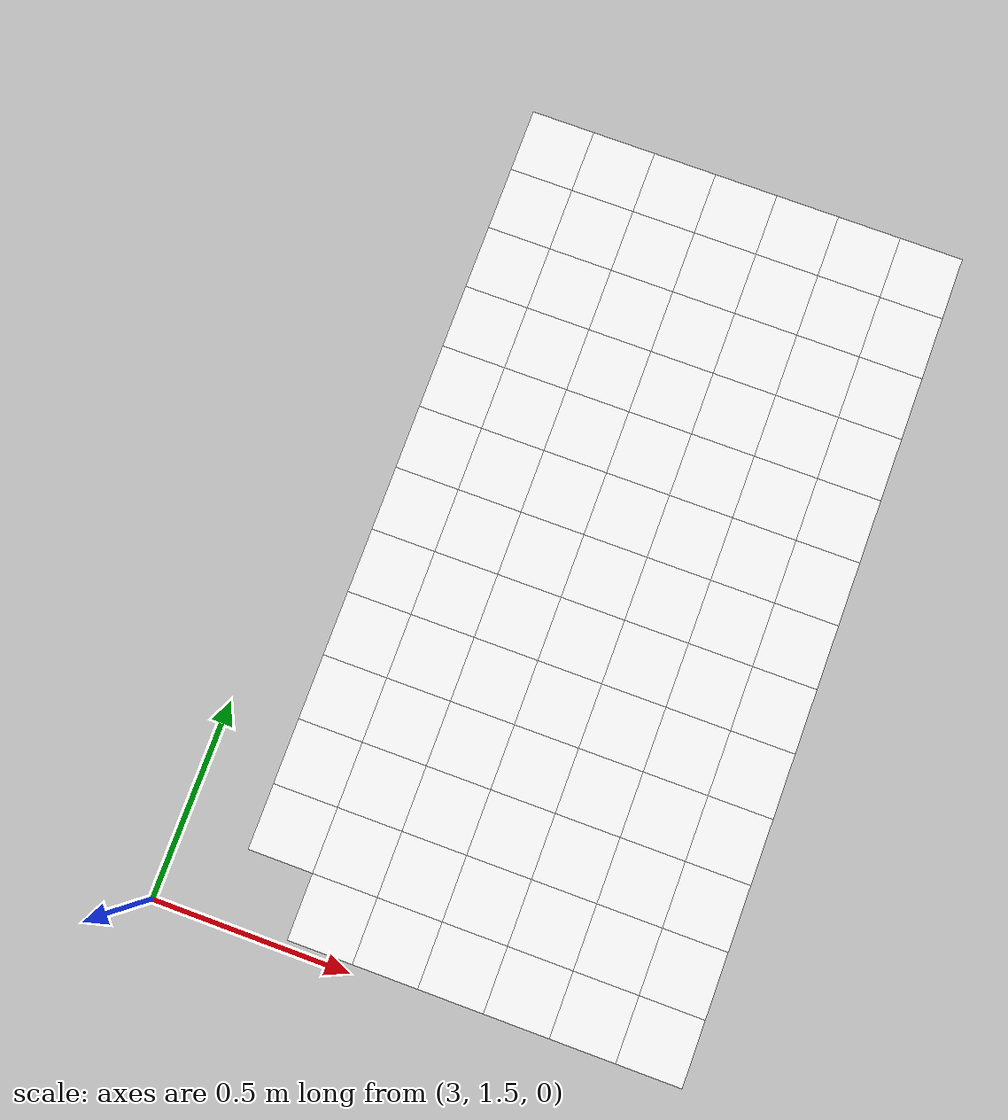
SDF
<sdf version="1.7">
 <world name="default">
  <include><uri>model://sun</uri></include>
  <model name="static_environment">
   <static>true</static>
   <link name="region_747">
    <pose>3.450000000000003 1.65 0.26 0.0 0.0 0.0</pose>
    <collision name="region_747_collision">
     <geometry><box><size>0.15 0.15 0.1</size></box></geometry>
     <surface><friction><ode><mu>1.0</mu><mu2>1.0</mu2></ode></friction></surface>
    </collision>
    <visual name="region_747_visual">
     <geometry><box><size>0.15 0.15 0.1</size></box></geometry>
     <material><ambient>1.0 1.0 1.0 1.0</ambient><diffuse>1.0 1.0 1.0 1.0</diffuse></material>
    </visual>
   </link>
   <link name="region_748">
    <pose>3.600000000000003 1.65 0.26 0.0 0.0 0.0</pose>
    <collision name="region_748_collision">
     <geometry><box><size>0.15 0.15 0.1</size></box></geometry>
     <surface><friction><ode><mu>1.0</mu><mu2>1.0</mu2></ode></friction></surface>
    </collision>
    <visual name="region_748_visual">
     <geometry><box><size>0.15 0.15 0.1</size></box></geometry>
     <material><ambient>1.0 1.0 1.0 1.0</ambient><diffuse>1.0 1.0 1.0 1.0</diffuse></material>
    </visual>
   </link>
   <link name="region_749">
    <pose>3.7500000000000036 1.65 0.26 0.0 0.0 0.0</pose>
    <collision name="region_749_collision">
     <geometry><box><size>0.15 0.15 0.1</size></box></geometry>
     <surface><friction><ode><mu>1.0</mu><mu2>1.0</mu2></ode></friction></surface>
    </collision>
    <visual name="region_749_visual">
     <geometry><box><size>0.15 0.15 0.1</size></box></geometry>
     <material><ambient>1.0 1.0 1.0 1.0</ambient><diffuse>1.0 1.0 1.0 1.0</diffuse></material>
    </visual>
   </link>
   <link name="region_750">
    <pose>3.900000000000004 1.65 0.26 0.0 0.0 0.0</pose>
    <collision name="region_750_collision">
     <geometry><box><size>0.15 0.15 0.1</size></box></geometry>
     <surface><friction><ode><mu>1.0</mu><mu2>1.0</mu2></ode></friction></surface>
    </collision>
    <visual name="region_750_visual">
     <geometry><box><size>0.15 0.15 0.1</size></box></geometry>
     <material><ambient>1.0 1.0 1.0 1.0</ambient><diffuse>1.0 1.0 1.0 1.0</diffuse></material>
    </visual>
   </link>
   <link name="region_751">
    <pose>4.050000000000004 1.65 0.26 0.0 0.0 0.0</pose>
    <collision name="region_751_collision">
     <geometry><box><size>0.15 0.15 0.1</size></box></geometry>
     <surface><friction><ode><mu>1.0</mu><mu2>1.0</mu2></ode></friction></surface>
    </collision>
    <visual name="region_751_visual">
     <geometry><box><size>0.15 0.15 0.1</size></box></geometry>
     <material><ambient>1.0 1.0 1.0 1.0</ambient><diffuse>1.0 1.0 1.0 1.0</diffuse></material>
    </visual>
   </link>
   <link name="region_752">
    <pose>4.200000000000005 1.65 0.26 0.0 0.0 0.0</pose>
    <collision name="region_752_collision">
     <geometry><box><size>0.15 0.15 0.1</size></box></geometry>
     <surface><friction><ode><mu>1.0</mu><mu2>1.0</mu2></ode></friction></surface>
    </collision>
    <visual name="region_752_visual">
     <geometry><box><size>0.15 0.15 0.1</size></box></geometry>
     <material><ambient>1.0 1.0 1.0 1.0</ambient><diffuse>1.0 1.0 1.0 1.0</diffuse></material>
    </visual>
   </link>
   <link name="region_766">
    <pose>3.3000000000000025 1.7999999999999998 0.26 0.0 0.0 0.0</pose>
    <collision name="region_766_collision">
     <geometry><box><size>0.15 0.15 0.1</size></box></geometry>
     <surface><friction><ode><mu>1.0</mu><mu2>1.0</mu2></ode></friction></surface>
    </collision>
    <visual name="region_766_visual">
     <geometry><box><size>0.15 0.15 0.1</size></box></geometry>
     <material><ambient>1.0 1.0 1.0 1.0</ambient><diffuse>1.0 1.0 1.0 1.0</diffuse></material>
    </visual>
   </link>
   <link name="region_767">
    <pose>3.450000000000003 1.7999999999999998 0.26 0.0 0.0 0.0</pose>
    <collision name="region_767_collision">
     <geometry><box><size>0.15 0.15 0.1</size></box></geometry>
     <surface><friction><ode><mu>1.0</mu><mu2>1.0</mu2></ode></friction></surface>
    </collision>
    <visual name="region_767_visual">
     <geometry><box><size>0.15 0.15 0.1</size></box></geometry>
     <material><ambient>1.0 1.0 1.0 1.0</ambient><diffuse>1.0 1.0 1.0 1.0</diffuse></material>
    </visual>
   </link>
   <link name="region_768">
    <pose>3.600000000000003 1.7999999999999998 0.26 0.0 0.0 0.0</pose>
    <collision name="region_768_collision">
     <geometry><box><size>0.15 0.15 0.1</size></box></geometry>
     <surface><friction><ode><mu>1.0</mu><mu2>1.0</mu2></ode></friction></surface>
    </collision>
    <visual name="region_768_visual">
     <geometry><box><size>0.15 0.15 0.1</size></box></geometry>
     <material><ambient>1.0 1.0 1.0 1.0</ambient><diffuse>1.0 1.0 1.0 1.0</diffuse></material>
    </visual>
   </link>
   <link name="region_769">
    <pose>3.7500000000000036 1.7999999999999998 0.26 0.0 0.0 0.0</pose>
    <collision name="region_769_collision">
     <geometry><box><size>0.15 0.15 0.1</size></box></geometry>
     <surface><friction><ode><mu>1.0</mu><mu2>1.0</mu2></ode></friction></surface>
    </collision>
    <visual name="region_769_visual">
     <geometry><box><size>0.15 0.15 0.1</size></box></geometry>
     <material><ambient>1.0 1.0 1.0 1.0</ambient><diffuse>1.0 1.0 1.0 1.0</diffuse></material>
    </visual>
   </link>
   <link name="region_770">
    <pose>3.900000000000004 1.7999999999999998 0.26 0.0 0.0 0.0</pose>
    <collision name="region_770_collision">
     <geometry><box><size>0.15 0.15 0.1</size></box></geometry>
     <surface><friction><ode><mu>1.0</mu><mu2>1.0</mu2></ode></friction></surface>
    </collision>
    <visual name="region_770_visual">
     <geometry><box><size>0.15 0.15 0.1</size></box></geometry>
     <material><ambient>1.0 1.0 1.0 1.0</ambient><diffuse>1.0 1.0 1.0 1.0</diffuse></material>
    </visual>
   </link>
   <link name="region_771">
    <pose>4.050000000000004 1.7999999999999998 0.26 0.0 0.0 0.0</pose>
    <collision name="region_771_collision">
     <geometry><box><size>0.15 0.15 0.1</size></box></geometry>
     <surface><friction><ode><mu>1.0</mu><mu2>1.0</mu2></ode></friction></surface>
    </collision>
    <visual name="region_771_visual">
     <geometry><box><size>0.15 0.15 0.1</size></box></geometry>
     <material><ambient>1.0 1.0 1.0 1.0</ambient><diffuse>1.0 1.0 1.0 1.0</diffuse></material>
    </visual>
   </link>
   <link name="region_772">
    <pose>4.200000000000005 1.7999999999999998 0.26 0.0 0.0 0.0</pose>
    <collision name="region_772_collision">
     <geometry><box><size>0.15 0.15 0.1</size></box></geometry>
     <surface><friction><ode><mu>1.0</mu><mu2>1.0</mu2></ode></friction></surface>
    </collision>
    <visual name="region_772_visual">
     <geometry><box><size>0.15 0.15 0.1</size></box></geometry>
     <material><ambient>1.0 1.0 1.0 1.0</ambient><diffuse>1.0 1.0 1.0 1.0</diffuse></material>
    </visual>
   </link>
   <link name="region_786">
    <pose>3.3000000000000025 1.9499999999999997 0.26 0.0 0.0 0.0</pose>
    <collision name="region_786_collision">
     <geometry><box><size>0.15 0.15 0.1</size></box></geometry>
     <surface><friction><ode><mu>1.0</mu><mu2>1.0</mu2></ode></friction></surface>
    </collision>
    <visual name="region_786_visual">
     <geometry><box><size>0.15 0.15 0.1</size></box></geometry>
     <material><ambient>1.0 1.0 1.0 1.0</ambient><diffuse>1.0 1.0 1.0 1.0</diffuse></material>
    </visual>
   </link>
   <link name="region_787">
    <pose>3.450000000000003 1.9499999999999997 0.26 0.0 0.0 0.0</pose>
    <collision name="region_787_collision">
     <geometry><box><size>0.15 0.15 0.1</size></box></geometry>
     <surface><friction><ode><mu>1.0</mu><mu2>1.0</mu2></ode></friction></surface>
    </collision>
    <visual name="region_787_visual">
     <geometry><box><size>0.15 0.15 0.1</size></box></geometry>
     <material><ambient>1.0 1.0 1.0 1.0</ambient><diffuse>1.0 1.0 1.0 1.0</diffuse></material>
    </visual>
   </link>
   <link name="region_788">
    <pose>3.600000000000003 1.9499999999999997 0.26 0.0 0.0 0.0</pose>
    <collision name="region_788_collision">
     <geometry><box><size>0.15 0.15 0.1</size></box></geometry>
     <surface><friction><ode><mu>1.0</mu><mu2>1.0</mu2></ode></friction></surface>
    </collision>
    <visual name="region_788_visual">
     <geometry><box><size>0.15 0.15 0.1</size></box></geometry>
     <material><ambient>1.0 1.0 1.0 1.0</ambient><diffuse>1.0 1.0 1.0 1.0</diffuse></material>
    </visual>
   </link>
   <link name="region_789">
    <pose>3.7500000000000036 1.9499999999999997 0.26 0.0 0.0 0.0</pose>
    <collision name="region_789_collision">
     <geometry><box><size>0.15 0.15 0.1</size></box></geometry>
     <surface><friction><ode><mu>1.0</mu><mu2>1.0</mu2></ode></friction></surface>
    </collision>
    <visual name="region_789_visual">
     <geometry><box><size>0.15 0.15 0.1</size></box></geometry>
     <material><ambient>1.0 1.0 1.0 1.0</ambient><diffuse>1.0 1.0 1.0 1.0</diffuse></material>
    </visual>
   </link>
   <link name="region_790">
    <pose>3.900000000000004 1.9499999999999997 0.26 0.0 0.0 0.0</pose>
    <collision name="region_790_collision">
     <geometry><box><size>0.15 0.15 0.1</size></box></geometry>
     <surface><friction><ode><mu>1.0</mu><mu2>1.0</mu2></ode></friction></surface>
    </collision>
    <visual name="region_790_visual">
     <geometry><box><size>0.15 0.15 0.1</size></box></geometry>
     <material><ambient>1.0 1.0 1.0 1.0</ambient><diffuse>1.0 1.0 1.0 1.0</diffuse></material>
    </visual>
   </link>
   <link name="region_791">
    <pose>4.050000000000004 1.9499999999999997 0.26 0.0 0.0 0.0</pose>
    <collision name="region_791_collision">
     <geometry><box><size>0.15 0.15 0.1</size></box></geometry>
     <surface><friction><ode><mu>1.0</mu><mu2>1.0</mu2></ode></friction></surface>
    </collision>
    <visual name="region_791_visual">
     <geometry><box><size>0.15 0.15 0.1</size></box></geometry>
     <material><ambient>1.0 1.0 1.0 1.0</ambient><diffuse>1.0 1.0 1.0 1.0</diffuse></material>
    </visual>
   </link>
   <link name="region_792">
    <pose>4.200000000000005 1.9499999999999997 0.26 0.0 0.0 0.0</pose>
    <collision name="region_792_collision">
     <geometry><box><size>0.15 0.15 0.1</size></box></geometry>
     <surface><friction><ode><mu>1.0</mu><mu2>1.0</mu2></ode></friction></surface>
    </collision>
    <visual name="region_792_visual">
     <geometry><box><size>0.15 0.15 0.1</size></box></geometry>
     <material><ambient>1.0 1.0 1.0 1.0</ambient><diffuse>1.0 1.0 1.0 1.0</diffuse></material>
    </visual>
   </link>
   <link name="region_806">
    <pose>3.3000000000000025 2.0999999999999996 0.26 0.0 0.0 0.0</pose>
    <collision name="region_806_collision">
     <geometry><box><size>0.15 0.15 0.1</size></box></geometry>
     <surface><friction><ode><mu>1.0</mu><mu2>1.0</mu2></ode></friction></surface>
    </collision>
    <visual name="region_806_visual">
     <geometry><box><size>0.15 0.15 0.1</size></box></geometry>
     <material><ambient>1.0 1.0 1.0 1.0</ambient><diffuse>1.0 1.0 1.0 1.0</diffuse></material>
    </visual>
   </link>
   <link name="region_807">
    <pose>3.450000000000003 2.0999999999999996 0.26 0.0 0.0 0.0</pose>
    <collision name="region_807_collision">
     <geometry><box><size>0.15 0.15 0.1</size></box></geometry>
     <surface><friction><ode><mu>1.0</mu><mu2>1.0</mu2></ode></friction></surface>
    </collision>
    <visual name="region_807_visual">
     <geometry><box><size>0.15 0.15 0.1</size></box></geometry>
     <material><ambient>1.0 1.0 1.0 1.0</ambient><diffuse>1.0 1.0 1.0 1.0</diffuse></material>
    </visual>
   </link>
   <link name="region_808">
    <pose>3.600000000000003 2.0999999999999996 0.26 0.0 0.0 0.0</pose>
    <collision name="region_808_collision">
     <geometry><box><size>0.15 0.15 0.1</size></box></geometry>
     <surface><friction><ode><mu>1.0</mu><mu2>1.0</mu2></ode></friction></surface>
    </collision>
    <visual name="region_808_visual">
     <geometry><box><size>0.15 0.15 0.1</size></box></geometry>
     <material><ambient>1.0 1.0 1.0 1.0</ambient><diffuse>1.0 1.0 1.0 1.0</diffuse></material>
    </visual>
   </link>
   <link name="region_809">
    <pose>3.7500000000000036 2.0999999999999996 0.26 0.0 0.0 0.0</pose>
    <collision name="region_809_collision">
     <geometry><box><size>0.15 0.15 0.1</size></box></geometry>
     <surface><friction><ode><mu>1.0</mu><mu2>1.0</mu2></ode></friction></surface>
    </collision>
    <visual name="region_809_visual">
     <geometry><box><size>0.15 0.15 0.1</size></box></geometry>
     <material><ambient>1.0 1.0 1.0 1.0</ambient><diffuse>1.0 1.0 1.0 1.0</diffuse></material>
    </visual>
   </link>
   <link name="region_810">
    <pose>3.900000000000004 2.0999999999999996 0.26 0.0 0.0 0.0</pose>
    <collision name="region_810_collision">
     <geometry><box><size>0.15 0.15 0.1</size></box></geometry>
     <surface><friction><ode><mu>1.0</mu><mu2>1.0</mu2></ode></friction></surface>
    </collision>
    <visual name="region_810_visual">
     <geometry><box><size>0.15 0.15 0.1</size></box></geometry>
     <material><ambient>1.0 1.0 1.0 1.0</ambient><diffuse>1.0 1.0 1.0 1.0</diffuse></material>
    </visual>
   </link>
   <link name="region_811">
    <pose>4.050000000000004 2.0999999999999996 0.26 0.0 0.0 0.0</pose>
    <collision name="region_811_collision">
     <geometry><box><size>0.15 0.15 0.1</size></box></geometry>
     <surface><friction><ode><mu>1.0</mu><mu2>1.0</mu2></ode></friction></surface>
    </collision>
    <visual name="region_811_visual">
     <geometry><box><size>0.15 0.15 0.1</size></box></geometry>
     <material><ambient>1.0 1.0 1.0 1.0</ambient><diffuse>1.0 1.0 1.0 1.0</diffuse></material>
    </visual>
   </link>
   <link name="region_812">
    <pose>4.200000000000005 2.0999999999999996 0.26 0.0 0.0 0.0</pose>
    <collision name="region_812_collision">
     <geometry><box><size>0.15 0.15 0.1</size></box></geometry>
     <surface><friction><ode><mu>1.0</mu><mu2>1.0</mu2></ode></friction></surface>
    </collision>
    <visual name="region_812_visual">
     <geometry><box><size>0.15 0.15 0.1</size></box></geometry>
     <material><ambient>1.0 1.0 1.0 1.0</ambient><diffuse>1.0 1.0 1.0 1.0</diffuse></material>
    </visual>
   </link>
   <link name="region_826">
    <pose>3.3000000000000025 2.2499999999999996 0.26 0.0 0.0 0.0</pose>
    <collision name="region_826_collision">
     <geometry><box><size>0.15 0.15 0.1</size></box></geometry>
     <surface><friction><ode><mu>1.0</mu><mu2>1.0</mu2></ode></friction></surface>
    </collision>
    <visual name="region_826_visual">
     <geometry><box><size>0.15 0.15 0.1</size></box></geometry>
     <material><ambient>1.0 1.0 1.0 1.0</ambient><diffuse>1.0 1.0 1.0 1.0</diffuse></material>
    </visual>
   </link>
   <link name="region_827">
    <pose>3.450000000000003 2.2499999999999996 0.26 0.0 0.0 0.0</pose>
    <collision name="region_827_collision">
     <geometry><box><size>0.15 0.15 0.1</size></box></geometry>
     <surface><friction><ode><mu>1.0</mu><mu2>1.0</mu2></ode></friction></surface>
    </collision>
    <visual name="region_827_visual">
     <geometry><box><size>0.15 0.15 0.1</size></box></geometry>
     <material><ambient>1.0 1.0 1.0 1.0</ambient><diffuse>1.0 1.0 1.0 1.0</diffuse></material>
    </visual>
   </link>
   <link name="region_828">
    <pose>3.600000000000003 2.2499999999999996 0.26 0.0 0.0 0.0</pose>
    <collision name="region_828_collision">
     <geometry><box><size>0.15 0.15 0.1</size></box></geometry>
     <surface><friction><ode><mu>1.0</mu><mu2>1.0</mu2></ode></friction></surface>
    </collision>
    <visual name="region_828_visual">
     <geometry><box><size>0.15 0.15 0.1</size></box></geometry>
     <material><ambient>1.0 1.0 1.0 1.0</ambient><diffuse>1.0 1.0 1.0 1.0</diffuse></material>
    </visual>
   </link>
   <link name="region_829">
    <pose>3.7500000000000036 2.2499999999999996 0.26 0.0 0.0 0.0</pose>
    <collision name="region_829_collision">
     <geometry><box><size>0.15 0.15 0.1</size></box></geometry>
     <surface><friction><ode><mu>1.0</mu><mu2>1.0</mu2></ode></friction></surface>
    </collision>
    <visual name="region_829_visual">
     <geometry><box><size>0.15 0.15 0.1</size></box></geometry>
     <material><ambient>1.0 1.0 1.0 1.0</ambient><diffuse>1.0 1.0 1.0 1.0</diffuse></material>
    </visual>
   </link>
   <link name="region_830">
    <pose>3.900000000000004 2.2499999999999996 0.26 0.0 0.0 0.0</pose>
    <collision name="region_830_collision">
     <geometry><box><size>0.15 0.15 0.1</size></box></geometry>
     <surface><friction><ode><mu>1.0</mu><mu2>1.0</mu2></ode></friction></surface>
    </collision>
    <visual name="region_830_visual">
     <geometry><box><size>0.15 0.15 0.1</size></box></geometry>
     <material><ambient>1.0 1.0 1.0 1.0</ambient><diffuse>1.0 1.0 1.0 1.0</diffuse></material>
    </visual>
   </link>
   <link name="region_831">
    <pose>4.050000000000004 2.2499999999999996 0.26 0.0 0.0 0.0</pose>
    <collision name="region_831_collision">
     <geometry><box><size>0.15 0.15 0.1</size></box></geometry>
     <surface><friction><ode><mu>1.0</mu><mu2>1.0</mu2></ode></friction></surface>
    </collision>
    <visual name="region_831_visual">
     <geometry><box><size>0.15 0.15 0.1</size></box></geometry>
     <material><ambient>1.0 1.0 1.0 1.0</ambient><diffuse>1.0 1.0 1.0 1.0</diffuse></material>
    </visual>
   </link>
   <link name="region_832">
    <pose>4.200000000000005 2.2499999999999996 0.26 0.0 0.0 0.0</pose>
    <collision name="region_832_collision">
     <geometry><box><size>0.15 0.15 0.1</size></box></geometry>
     <surface><friction><ode><mu>1.0</mu><mu2>1.0</mu2></ode></friction></surface>
    </collision>
    <visual name="region_832_visual">
     <geometry><box><size>0.15 0.15 0.1</size></box></geometry>
     <material><ambient>1.0 1.0 1.0 1.0</ambient><diffuse>1.0 1.0 1.0 1.0</diffuse></material>
    </visual>
   </link>
   <link name="region_846">
    <pose>3.3000000000000025 2.3999999999999995 0.26 0.0 0.0 0.0</pose>
    <collision name="region_846_collision">
     <geometry><box><size>0.15 0.15 0.1</size></box></geometry>
     <surface><friction><ode><mu>1.0</mu><mu2>1.0</mu2></ode></friction></surface>
    </collision>
    <visual name="region_846_visual">
     <geometry><box><size>0.15 0.15 0.1</size></box></geometry>
     <material><ambient>1.0 1.0 1.0 1.0</ambient><diffuse>1.0 1.0 1.0 1.0</diffuse></material>
    </visual>
   </link>
   <link name="region_847">
    <pose>3.450000000000003 2.3999999999999995 0.26 0.0 0.0 0.0</pose>
    <collision name="region_847_collision">
     <geometry><box><size>0.15 0.15 0.1</size></box></geometry>
     <surface><friction><ode><mu>1.0</mu><mu2>1.0</mu2></ode></friction></surface>
    </collision>
    <visual name="region_847_visual">
     <geometry><box><size>0.15 0.15 0.1</size></box></geometry>
     <material><ambient>1.0 1.0 1.0 1.0</ambient><diffuse>1.0 1.0 1.0 1.0</diffuse></material>
    </visual>
   </link>
   <link name="region_848">
    <pose>3.600000000000003 2.3999999999999995 0.26 0.0 0.0 0.0</pose>
    <collision name="region_848_collision">
     <geometry><box><size>0.15 0.15 0.1</size></box></geometry>
     <surface><friction><ode><mu>1.0</mu><mu2>1.0</mu2></ode></friction></surface>
    </collision>
    <visual name="region_848_visual">
     <geometry><box><size>0.15 0.15 0.1</size></box></geometry>
     <material><ambient>1.0 1.0 1.0 1.0</ambient><diffuse>1.0 1.0 1.0 1.0</diffuse></material>
    </visual>
   </link>
   <link name="region_849">
    <pose>3.7500000000000036 2.3999999999999995 0.26 0.0 0.0 0.0</pose>
    <collision name="region_849_collision">
     <geometry><box><size>0.15 0.15 0.1</size></box></geometry>
     <surface><friction><ode><mu>1.0</mu><mu2>1.0</mu2></ode></friction></surface>
    </collision>
    <visual name="region_849_visual">
     <geometry><box><size>0.15 0.15 0.1</size></box></geometry>
     <material><ambient>1.0 1.0 1.0 1.0</ambient><diffuse>1.0 1.0 1.0 1.0</diffuse></material>
    </visual>
   </link>
   <link name="region_850">
    <pose>3.900000000000004 2.3999999999999995 0.26 0.0 0.0 0.0</pose>
    <collision name="region_850_collision">
     <geometry><box><size>0.15 0.15 0.1</size></box></geometry>
     <surface><friction><ode><mu>1.0</mu><mu2>1.0</mu2></ode></friction></surface>
    </collision>
    <visual name="region_850_visual">
     <geometry><box><size>0.15 0.15 0.1</size></box></geometry>
     <material><ambient>1.0 1.0 1.0 1.0</ambient><diffuse>1.0 1.0 1.0 1.0</diffuse></material>
    </visual>
   </link>
   <link name="region_851">
    <pose>4.050000000000004 2.3999999999999995 0.26 0.0 0.0 0.0</pose>
    <collision name="region_851_collision">
     <geometry><box><size>0.15 0.15 0.1</size></box></geometry>
     <surface><friction><ode><mu>1.0</mu><mu2>1.0</mu2></ode></friction></surface>
    </collision>
    <visual name="region_851_visual">
     <geometry><box><size>0.15 0.15 0.1</size></box></geometry>
     <material><ambient>1.0 1.0 1.0 1.0</ambient><diffuse>1.0 1.0 1.0 1.0</diffuse></material>
    </visual>
   </link>
   <link name="region_852">
    <pose>4.200000000000005 2.3999999999999995 0.26 0.0 0.0 0.0</pose>
    <collision name="region_852_collision">
     <geometry><box><size>0.15 0.15 0.1</size></box></geometry>
     <surface><friction><ode><mu>1.0</mu><mu2>1.0</mu2></ode></friction></surface>
    </collision>
    <visual name="region_852_visual">
     <geometry><box><size>0.15 0.15 0.1</size></box></geometry>
     <material><ambient>1.0 1.0 1.0 1.0</ambient><diffuse>1.0 1.0 1.0 1.0</diffuse></material>
    </visual>
   </link>
   <link name="region_866">
    <pose>3.3000000000000025 2.5499999999999994 0.26 0.0 0.0 0.0</pose>
    <collision name="region_866_collision">
     <geometry><box><size>0.15 0.15 0.1</size></box></geometry>
     <surface><friction><ode><mu>1.0</mu><mu2>1.0</mu2></ode></friction></surface>
    </collision>
    <visual name="region_866_visual">
     <geometry><box><size>0.15 0.15 0.1</size></box></geometry>
     <material><ambient>1.0 1.0 1.0 1.0</ambient><diffuse>1.0 1.0 1.0 1.0</diffuse></material>
    </visual>
   </link>
   <link name="region_867">
    <pose>3.450000000000003 2.5499999999999994 0.26 0.0 0.0 0.0</pose>
    <collision name="region_867_collision">
     <geometry><box><size>0.15 0.15 0.1</size></box></geometry>
     <surface><friction><ode><mu>1.0</mu><mu2>1.0</mu2></ode></friction></surface>
    </collision>
    <visual name="region_867_visual">
     <geometry><box><size>0.15 0.15 0.1</size></box></geometry>
     <material><ambient>1.0 1.0 1.0 1.0</ambient><diffuse>1.0 1.0 1.0 1.0</diffuse></material>
    </visual>
   </link>
   <link name="region_868">
    <pose>3.600000000000003 2.5499999999999994 0.26 0.0 0.0 0.0</pose>
    <collision name="region_868_collision">
     <geometry><box><size>0.15 0.15 0.1</size></box></geometry>
     <surface><friction><ode><mu>1.0</mu><mu2>1.0</mu2></ode></friction></surface>
    </collision>
    <visual name="region_868_visual">
     <geometry><box><size>0.15 0.15 0.1</size></box></geometry>
     <material><ambient>1.0 1.0 1.0 1.0</ambient><diffuse>1.0 1.0 1.0 1.0</diffuse></material>
    </visual>
   </link>
   <link name="region_869">
    <pose>3.7500000000000036 2.5499999999999994 0.26 0.0 0.0 0.0</pose>
    <collision name="region_869_collision">
     <geometry><box><size>0.15 0.15 0.1</size></box></geometry>
     <surface><friction><ode><mu>1.0</mu><mu2>1.0</mu2></ode></friction></surface>
    </collision>
    <visual name="region_869_visual">
     <geometry><box><size>0.15 0.15 0.1</size></box></geometry>
     <material><ambient>1.0 1.0 1.0 1.0</ambient><diffuse>1.0 1.0 1.0 1.0</diffuse></material>
    </visual>
   </link>
   <link name="region_870">
    <pose>3.900000000000004 2.5499999999999994 0.26 0.0 0.0 0.0</pose>
    <collision name="region_870_collision">
     <geometry><box><size>0.15 0.15 0.1</size></box></geometry>
     <surface><friction><ode><mu>1.0</mu><mu2>1.0</mu2></ode></friction></surface>
    </collision>
    <visual name="region_870_visual">
     <geometry><box><size>0.15 0.15 0.1</size></box></geometry>
     <material><ambient>1.0 1.0 1.0 1.0</ambient><diffuse>1.0 1.0 1.0 1.0</diffuse></material>
    </visual>
   </link>
   <link name="region_871">
    <pose>4.050000000000004 2.5499999999999994 0.26 0.0 0.0 0.0</pose>
    <collision name="region_871_collision">
     <geometry><box><size>0.15 0.15 0.1</size></box></geometry>
     <surface><friction><ode><mu>1.0</mu><mu2>1.0</mu2></ode></friction></surface>
    </collision>
    <visual name="region_871_visual">
     <geometry><box><size>0.15 0.15 0.1</size></box></geometry>
     <material><ambient>1.0 1.0 1.0 1.0</ambient><diffuse>1.0 1.0 1.0 1.0</diffuse></material>
    </visual>
   </link>
   <link name="region_872">
    <pose>4.200000000000005 2.5499999999999994 0.26 0.0 0.0 0.0</pose>
    <collision name="region_872_collision">
     <geometry><box><size>0.15 0.15 0.1</size></box></geometry>
     <surface><friction><ode><mu>1.0</mu><mu2>1.0</mu2></ode></friction></surface>
    </collision>
    <visual name="region_872_visual">
     <geometry><box><size>0.15 0.15 0.1</size></box></geometry>
     <material><ambient>1.0 1.0 1.0 1.0</ambient><diffuse>1.0 1.0 1.0 1.0</diffuse></material>
    </visual>
   </link>
   <link name="region_886">
    <pose>3.3000000000000025 2.6999999999999997 0.26 0.0 0.0 0.0</pose>
    <collision name="region_886_collision">
     <geometry><box><size>0.15 0.15 0.1</size></box></geometry>
     <surface><friction><ode><mu>1.0</mu><mu2>1.0</mu2></ode></friction></surface>
    </collision>
    <visual name="region_886_visual">
     <geometry><box><size>0.15 0.15 0.1</size></box></geometry>
     <material><ambient>1.0 1.0 1.0 1.0</ambient><diffuse>1.0 1.0 1.0 1.0</diffuse></material>
    </visual>
   </link>
   <link name="region_887">
    <pose>3.450000000000003 2.6999999999999997 0.26 0.0 0.0 0.0</pose>
    <collision name="region_887_collision">
     <geometry><box><size>0.15 0.15 0.1</size></box></geometry>
     <surface><friction><ode><mu>1.0</mu><mu2>1.0</mu2></ode></friction></surface>
    </collision>
    <visual name="region_887_visual">
     <geometry><box><size>0.15 0.15 0.1</size></box></geometry>
     <material><ambient>1.0 1.0 1.0 1.0</ambient><diffuse>1.0 1.0 1.0 1.0</diffuse></material>
    </visual>
   </link>
   <link name="region_888">
    <pose>3.600000000000003 2.6999999999999997 0.26 0.0 0.0 0.0</pose>
    <collision name="region_888_collision">
     <geometry><box><size>0.15 0.15 0.1</size></box></geometry>
     <surface><friction><ode><mu>1.0</mu><mu2>1.0</mu2></ode></friction></surface>
    </collision>
    <visual name="region_888_visual">
     <geometry><box><size>0.15 0.15 0.1</size></box></geometry>
     <material><ambient>1.0 1.0 1.0 1.0</ambient><diffuse>1.0 1.0 1.0 1.0</diffuse></material>
    </visual>
   </link>
   <link name="region_889">
    <pose>3.7500000000000036 2.6999999999999997 0.26 0.0 0.0 0.0</pose>
    <collision name="region_889_collision">
     <geometry><box><size>0.15 0.15 0.1</size></box></geometry>
     <surface><friction><ode><mu>1.0</mu><mu2>1.0</mu2></ode></friction></surface>
    </collision>
    <visual name="region_889_visual">
     <geometry><box><size>0.15 0.15 0.1</size></box></geometry>
     <material><ambient>1.0 1.0 1.0 1.0</ambient><diffuse>1.0 1.0 1.0 1.0</diffuse></material>
    </visual>
   </link>
   <link name="region_890">
    <pose>3.900000000000004 2.6999999999999997 0.26 0.0 0.0 0.0</pose>
    <collision name="region_890_collision">
     <geometry><box><size>0.15 0.15 0.1</size></box></geometry>
     <surface><friction><ode><mu>1.0</mu><mu2>1.0</mu2></ode></friction></surface>
    </collision>
    <visual name="region_890_visual">
     <geometry><box><size>0.15 0.15 0.1</size></box></geometry>
     <material><ambient>1.0 1.0 1.0 1.0</ambient><diffuse>1.0 1.0 1.0 1.0</diffuse></material>
    </visual>
   </link>
   <link name="region_891">
    <pose>4.050000000000004 2.6999999999999997 0.26 0.0 0.0 0.0</pose>
    <collision name="region_891_collision">
     <geometry><box><size>0.15 0.15 0.1</size></box></geometry>
     <surface><friction><ode><mu>1.0</mu><mu2>1.0</mu2></ode></friction></surface>
    </collision>
    <visual name="region_891_visual">
     <geometry><box><size>0.15 0.15 0.1</size></box></geometry>
     <material><ambient>1.0 1.0 1.0 1.0</ambient><diffuse>1.0 1.0 1.0 1.0</diffuse></material>
    </visual>
   </link>
   <link name="region_892">
    <pose>4.200000000000005 2.6999999999999997 0.26 0.0 0.0 0.0</pose>
    <collision name="region_892_collision">
     <geometry><box><size>0.15 0.15 0.1</size></box></geometry>
     <surface><friction><ode><mu>1.0</mu><mu2>1.0</mu2></ode></friction></surface>
    </collision>
    <visual name="region_892_visual">
     <geometry><box><size>0.15 0.15 0.1</size></box></geometry>
     <material><ambient>1.0 1.0 1.0 1.0</ambient><diffuse>1.0 1.0 1.0 1.0</diffuse></material>
    </visual>
   </link>
   <link name="region_906">
    <pose>3.3000000000000025 2.8499999999999996 0.26 0.0 0.0 0.0</pose>
    <collision name="region_906_collision">
     <geometry><box><size>0.15 0.15 0.1</size></box></geometry>
     <surface><friction><ode><mu>1.0</mu><mu2>1.0</mu2></ode></friction></surface>
    </collision>
    <visual name="region_906_visual">
     <geometry><box><size>0.15 0.15 0.1</size></box></geometry>
     <material><ambient>1.0 1.0 1.0 1.0</ambient><diffuse>1.0 1.0 1.0 1.0</diffuse></material>
    </visual>
   </link>
   <link name="region_907">
    <pose>3.450000000000003 2.8499999999999996 0.26 0.0 0.0 0.0</pose>
    <collision name="region_907_collision">
     <geometry><box><size>0.15 0.15 0.1</size></box></geometry>
     <surface><friction><ode><mu>1.0</mu><mu2>1.0</mu2></ode></friction></surface>
    </collision>
    <visual name="region_907_visual">
     <geometry><box><size>0.15 0.15 0.1</size></box></geometry>
     <material><ambient>1.0 1.0 1.0 1.0</ambient><diffuse>1.0 1.0 1.0 1.0</diffuse></material>
    </visual>
   </link>
   <link name="region_908">
    <pose>3.600000000000003 2.8499999999999996 0.26 0.0 0.0 0.0</pose>
    <collision name="region_908_collision">
     <geometry><box><size>0.15 0.15 0.1</size></box></geometry>
     <surface><friction><ode><mu>1.0</mu><mu2>1.0</mu2></ode></friction></surface>
    </collision>
    <visual name="region_908_visual">
     <geometry><box><size>0.15 0.15 0.1</size></box></geometry>
     <material><ambient>1.0 1.0 1.0 1.0</ambient><diffuse>1.0 1.0 1.0 1.0</diffuse></material>
    </visual>
   </link>
   <link name="region_909">
    <pose>3.7500000000000036 2.8499999999999996 0.26 0.0 0.0 0.0</pose>
    <collision name="region_909_collision">
     <geometry><box><size>0.15 0.15 0.1</size></box></geometry>
     <surface><friction><ode><mu>1.0</mu><mu2>1.0</mu2></ode></friction></surface>
    </collision>
    <visual name="region_909_visual">
     <geometry><box><size>0.15 0.15 0.1</size></box></geometry>
     <material><ambient>1.0 1.0 1.0 1.0</ambient><diffuse>1.0 1.0 1.0 1.0</diffuse></material>
    </visual>
   </link>
   <link name="region_910">
    <pose>3.900000000000004 2.8499999999999996 0.26 0.0 0.0 0.0</pose>
    <collision name="region_910_collision">
     <geometry><box><size>0.15 0.15 0.1</size></box></geometry>
     <surface><friction><ode><mu>1.0</mu><mu2>1.0</mu2></ode></friction></surface>
    </collision>
    <visual name="region_910_visual">
     <geometry><box><size>0.15 0.15 0.1</size></box></geometry>
     <material><ambient>1.0 1.0 1.0 1.0</ambient><diffuse>1.0 1.0 1.0 1.0</diffuse></material>
    </visual>
   </link>
   <link name="region_911">
    <pose>4.050000000000004 2.8499999999999996 0.26 0.0 0.0 0.0</pose>
    <collision name="region_911_collision">
     <geometry><box><size>0.15 0.15 0.1</size></box></geometry>
     <surface><friction><ode><mu>1.0</mu><mu2>1.0</mu2></ode></friction></surface>
    </collision>
    <visual name="region_911_visual">
     <geometry><box><size>0.15 0.15 0.1</size></box></geometry>
     <material><ambient>1.0 1.0 1.0 1.0</ambient><diffuse>1.0 1.0 1.0 1.0</diffuse></material>
    </visual>
   </link>
   <link name="region_912">
    <pose>4.200000000000005 2.8499999999999996 0.26 0.0 0.0 0.0</pose>
    <collision name="region_912_collision">
     <geometry><box><size>0.15 0.15 0.1</size></box></geometry>
     <surface><friction><ode><mu>1.0</mu><mu2>1.0</mu2></ode></friction></surface>
    </collision>
    <visual name="region_912_visual">
     <geometry><box><size>0.15 0.15 0.1</size></box></geometry>
     <material><ambient>1.0 1.0 1.0 1.0</ambient><diffuse>1.0 1.0 1.0 1.0</diffuse></material>
    </visual>
   </link>
   <link name="region_926">
    <pose>3.3000000000000025 2.9999999999999996 0.26 0.0 0.0 0.0</pose>
    <collision name="region_926_collision">
     <geometry><box><size>0.15 0.15 0.1</size></box></geometry>
     <surface><friction><ode><mu>1.0</mu><mu2>1.0</mu2></ode></friction></surface>
    </collision>
    <visual name="region_926_visual">
     <geometry><box><size>0.15 0.15 0.1</size></box></geometry>
     <material><ambient>1.0 1.0 1.0 1.0</ambient><diffuse>1.0 1.0 1.0 1.0</diffuse></material>
    </visual>
   </link>
   <link name="region_927">
    <pose>3.450000000000003 2.9999999999999996 0.26 0.0 0.0 0.0</pose>
    <collision name="region_927_collision">
     <geometry><box><size>0.15 0.15 0.1</size></box></geometry>
     <surface><friction><ode><mu>1.0</mu><mu2>1.0</mu2></ode></friction></surface>
    </collision>
    <visual name="region_927_visual">
     <geometry><box><size>0.15 0.15 0.1</size></box></geometry>
     <material><ambient>1.0 1.0 1.0 1.0</ambient><diffuse>1.0 1.0 1.0 1.0</diffuse></material>
    </visual>
   </link>
   <link name="region_928">
    <pose>3.600000000000003 2.9999999999999996 0.26 0.0 0.0 0.0</pose>
    <collision name="region_928_collision">
     <geometry><box><size>0.15 0.15 0.1</size></box></geometry>
     <surface><friction><ode><mu>1.0</mu><mu2>1.0</mu2></ode></friction></surface>
    </collision>
    <visual name="region_928_visual">
     <geometry><box><size>0.15 0.15 0.1</size></box></geometry>
     <material><ambient>1.0 1.0 1.0 1.0</ambient><diffuse>1.0 1.0 1.0 1.0</diffuse></material>
    </visual>
   </link>
   <link name="region_929">
    <pose>3.7500000000000036 2.9999999999999996 0.26 0.0 0.0 0.0</pose>
    <collision name="region_929_collision">
     <geometry><box><size>0.15 0.15 0.1</size></box></geometry>
     <surface><friction><ode><mu>1.0</mu><mu2>1.0</mu2></ode></friction></surface>
    </collision>
    <visual name="region_929_visual">
     <geometry><box><size>0.15 0.15 0.1</size></box></geometry>
     <material><ambient>1.0 1.0 1.0 1.0</ambient><diffuse>1.0 1.0 1.0 1.0</diffuse></material>
    </visual>
   </link>
   <link name="region_930">
    <pose>3.900000000000004 2.9999999999999996 0.26 0.0 0.0 0.0</pose>
    <collision name="region_930_collision">
     <geometry><box><size>0.15 0.15 0.1</size></box></geometry>
     <surface><friction><ode><mu>1.0</mu><mu2>1.0</mu2></ode></friction></surface>
    </collision>
    <visual name="region_930_visual">
     <geometry><box><size>0.15 0.15 0.1</size></box></geometry>
     <material><ambient>1.0 1.0 1.0 1.0</ambient><diffuse>1.0 1.0 1.0 1.0</diffuse></material>
    </visual>
   </link>
   <link name="region_931">
    <pose>4.050000000000004 2.9999999999999996 0.26 0.0 0.0 0.0</pose>
    <collision name="region_931_collision">
     <geometry><box><size>0.15 0.15 0.1</size></box></geometry>
     <surface><friction><ode><mu>1.0</mu><mu2>1.0</mu2></ode></friction></surface>
    </collision>
    <visual name="region_931_visual">
     <geometry><box><size>0.15 0.15 0.1</size></box></geometry>
     <material><ambient>1.0 1.0 1.0 1.0</ambient><diffuse>1.0 1.0 1.0 1.0</diffuse></material>
    </visual>
   </link>
   <link name="region_932">
    <pose>4.200000000000005 2.9999999999999996 0.26 0.0 0.0 0.0</pose>
    <collision name="region_932_collision">
     <geometry><box><size>0.15 0.15 0.1</size></box></geometry>
     <surface><friction><ode><mu>1.0</mu><mu2>1.0</mu2></ode></friction></surface>
    </collision>
    <visual name="region_932_visual">
     <geometry><box><size>0.15 0.15 0.1</size></box></geometry>
     <material><ambient>1.0 1.0 1.0 1.0</ambient><diffuse>1.0 1.0 1.0 1.0</diffuse></material>
    </visual>
   </link>
   <link name="region_946">
    <pose>3.3000000000000025 3.1499999999999995 0.26 0.0 0.0 0.0</pose>
    <collision name="region_946_collision">
     <geometry><box><size>0.15 0.15 0.1</size></box></geometry>
     <surface><friction><ode><mu>1.0</mu><mu2>1.0</mu2></ode></friction></surface>
    </collision>
    <visual name="region_946_visual">
     <geometry><box><size>0.15 0.15 0.1</size></box></geometry>
     <material><ambient>1.0 1.0 1.0 1.0</ambient><diffuse>1.0 1.0 1.0 1.0</diffuse></material>
    </visual>
   </link>
   <link name="region_947">
    <pose>3.450000000000003 3.1499999999999995 0.26 0.0 0.0 0.0</pose>
    <collision name="region_947_collision">
     <geometry><box><size>0.15 0.15 0.1</size></box></geometry>
     <surface><friction><ode><mu>1.0</mu><mu2>1.0</mu2></ode></friction></surface>
    </collision>
    <visual name="region_947_visual">
     <geometry><box><size>0.15 0.15 0.1</size></box></geometry>
     <material><ambient>1.0 1.0 1.0 1.0</ambient><diffuse>1.0 1.0 1.0 1.0</diffuse></material>
    </visual>
   </link>
   <link name="region_948">
    <pose>3.600000000000003 3.1499999999999995 0.26 0.0 0.0 0.0</pose>
    <collision name="region_948_collision">
     <geometry><box><size>0.15 0.15 0.1</size></box></geometry>
     <surface><friction><ode><mu>1.0</mu><mu2>1.0</mu2></ode></friction></surface>
    </collision>
    <visual name="region_948_visual">
     <geometry><box><size>0.15 0.15 0.1</size></box></geometry>
     <material><ambient>1.0 1.0 1.0 1.0</ambient><diffuse>1.0 1.0 1.0 1.0</diffuse></material>
    </visual>
   </link>
   <link name="region_949">
    <pose>3.7500000000000036 3.1499999999999995 0.26 0.0 0.0 0.0</pose>
    <collision name="region_949_collision">
     <geometry><box><size>0.15 0.15 0.1</size></box></geometry>
     <surface><friction><ode><mu>1.0</mu><mu2>1.0</mu2></ode></friction></surface>
    </collision>
    <visual name="region_949_visual">
     <geometry><box><size>0.15 0.15 0.1</size></box></geometry>
     <material><ambient>1.0 1.0 1.0 1.0</ambient><diffuse>1.0 1.0 1.0 1.0</diffuse></material>
    </visual>
   </link>
   <link name="region_950">
    <pose>3.900000000000004 3.1499999999999995 0.26 0.0 0.0 0.0</pose>
    <collision name="region_950_collision">
     <geometry><box><size>0.15 0.15 0.1</size></box></geometry>
     <surface><friction><ode><mu>1.0</mu><mu2>1.0</mu2></ode></friction></surface>
    </collision>
    <visual name="region_950_visual">
     <geometry><box><size>0.15 0.15 0.1</size></box></geometry>
     <material><ambient>1.0 1.0 1.0 1.0</ambient><diffuse>1.0 1.0 1.0 1.0</diffuse></material>
    </visual>
   </link>
   <link name="region_951">
    <pose>4.050000000000004 3.1499999999999995 0.26 0.0 0.0 0.0</pose>
    <collision name="region_951_collision">
     <geometry><box><size>0.15 0.15 0.1</size></box></geometry>
     <surface><friction><ode><mu>1.0</mu><mu2>1.0</mu2></ode></friction></surface>
    </collision>
    <visual name="region_951_visual">
     <geometry><box><size>0.15 0.15 0.1</size></box></geometry>
     <material><ambient>1.0 1.0 1.0 1.0</ambient><diffuse>1.0 1.0 1.0 1.0</diffuse></material>
    </visual>
   </link>
   <link name="region_952">
    <pose>4.200000000000005 3.1499999999999995 0.26 0.0 0.0 0.0</pose>
    <collision name="region_952_collision">
     <geometry><box><size>0.15 0.15 0.1</size></box></geometry>
     <surface><friction><ode><mu>1.0</mu><mu2>1.0</mu2></ode></friction></surface>
    </collision>
    <visual name="region_952_visual">
     <geometry><box><size>0.15 0.15 0.1</size></box></geometry>
     <material><ambient>1.0 1.0 1.0 1.0</ambient><diffuse>1.0 1.0 1.0 1.0</diffuse></material>
    </visual>
   </link>
   <link name="region_966">
    <pose>3.3000000000000025 3.2999999999999994 0.26 0.0 0.0 0.0</pose>
    <collision name="region_966_collision">
     <geometry><box><size>0.15 0.15 0.1</size></box></geometry>
     <surface><friction><ode><mu>1.0</mu><mu2>1.0</mu2></ode></friction></surface>
    </collision>
    <visual name="region_966_visual">
     <geometry><box><size>0.15 0.15 0.1</size></box></geometry>
     <material><ambient>1.0 1.0 1.0 1.0</ambient><diffuse>1.0 1.0 1.0 1.0</diffuse></material>
    </visual>
   </link>
   <link name="region_967">
    <pose>3.450000000000003 3.2999999999999994 0.26 0.0 0.0 0.0</pose>
    <collision name="region_967_collision">
     <geometry><box><size>0.15 0.15 0.1</size></box></geometry>
     <surface><friction><ode><mu>1.0</mu><mu2>1.0</mu2></ode></friction></surface>
    </collision>
    <visual name="region_967_visual">
     <geometry><box><size>0.15 0.15 0.1</size></box></geometry>
     <material><ambient>1.0 1.0 1.0 1.0</ambient><diffuse>1.0 1.0 1.0 1.0</diffuse></material>
    </visual>
   </link>
   <link name="region_968">
    <pose>3.600000000000003 3.2999999999999994 0.26 0.0 0.0 0.0</pose>
    <collision name="region_968_collision">
     <geometry><box><size>0.15 0.15 0.1</size></box></geometry>
     <surface><friction><ode><mu>1.0</mu><mu2>1.0</mu2></ode></friction></surface>
    </collision>
    <visual name="region_968_visual">
     <geometry><box><size>0.15 0.15 0.1</size></box></geometry>
     <material><ambient>1.0 1.0 1.0 1.0</ambient><diffuse>1.0 1.0 1.0 1.0</diffuse></material>
    </visual>
   </link>
   <link name="region_969">
    <pose>3.7500000000000036 3.2999999999999994 0.26 0.0 0.0 0.0</pose>
    <collision name="region_969_collision">
     <geometry><box><size>0.15 0.15 0.1</size></box></geometry>
     <surface><friction><ode><mu>1.0</mu><mu2>1.0</mu2></ode></friction></surface>
    </collision>
    <visual name="region_969_visual">
     <geometry><box><size>0.15 0.15 0.1</size></box></geometry>
     <material><ambient>1.0 1.0 1.0 1.0</ambient><diffuse>1.0 1.0 1.0 1.0</diffuse></material>
    </visual>
   </link>
   <link name="region_970">
    <pose>3.900000000000004 3.2999999999999994 0.26 0.0 0.0 0.0</pose>
    <collision name="region_970_collision">
     <geometry><box><size>0.15 0.15 0.1</size></box></geometry>
     <surface><friction><ode><mu>1.0</mu><mu2>1.0</mu2></ode></friction></surface>
    </collision>
    <visual name="region_970_visual">
     <geometry><box><size>0.15 0.15 0.1</size></box></geometry>
     <material><ambient>1.0 1.0 1.0 1.0</ambient><diffuse>1.0 1.0 1.0 1.0</diffuse></material>
    </visual>
   </link>
   <link name="region_971">
    <pose>4.050000000000004 3.2999999999999994 0.26 0.0 0.0 0.0</pose>
    <collision name="region_971_collision">
     <geometry><box><size>0.15 0.15 0.1</size></box></geometry>
     <surface><friction><ode><mu>1.0</mu><mu2>1.0</mu2></ode></friction></surface>
    </collision>
    <visual name="region_971_visual">
     <geometry><box><size>0.15 0.15 0.1</size></box></geometry>
     <material><ambient>1.0 1.0 1.0 1.0</ambient><diffuse>1.0 1.0 1.0 1.0</diffuse></material>
    </visual>
   </link>
   <link name="region_972">
    <pose>4.200000000000005 3.2999999999999994 0.26 0.0 0.0 0.0</pose>
    <collision name="region_972_collision">
     <geometry><box><size>0.15 0.15 0.1</size></box></geometry>
     <surface><friction><ode><mu>1.0</mu><mu2>1.0</mu2></ode></friction></surface>
    </collision>
    <visual name="region_972_visual">
     <geometry><box><size>0.15 0.15 0.1</size></box></geometry>
     <material><ambient>1.0 1.0 1.0 1.0</ambient><diffuse>1.0 1.0 1.0 1.0</diffuse></material>
    </visual>
   </link>
   <link name="region_986">
    <pose>3.3000000000000025 3.4499999999999993 0.26 0.0 0.0 0.0</pose>
    <collision name="region_986_collision">
     <geometry><box><size>0.15 0.15 0.1</size></box></geometry>
     <surface><friction><ode><mu>1.0</mu><mu2>1.0</mu2></ode></friction></surface>
    </collision>
    <visual name="region_986_visual">
     <geometry><box><size>0.15 0.15 0.1</size></box></geometry>
     <material><ambient>1.0 1.0 1.0 1.0</ambient><diffuse>1.0 1.0 1.0 1.0</diffuse></material>
    </visual>
   </link>
   <link name="region_987">
    <pose>3.450000000000003 3.4499999999999993 0.26 0.0 0.0 0.0</pose>
    <collision name="region_987_collision">
     <geometry><box><size>0.15 0.15 0.1</size></box></geometry>
     <surface><friction><ode><mu>1.0</mu><mu2>1.0</mu2></ode></friction></surface>
    </collision>
    <visual name="region_987_visual">
     <geometry><box><size>0.15 0.15 0.1</size></box></geometry>
     <material><ambient>1.0 1.0 1.0 1.0</ambient><diffuse>1.0 1.0 1.0 1.0</diffuse></material>
    </visual>
   </link>
   <link name="region_988">
    <pose>3.600000000000003 3.4499999999999993 0.26 0.0 0.0 0.0</pose>
    <collision name="region_988_collision">
     <geometry><box><size>0.15 0.15 0.1</size></box></geometry>
     <surface><friction><ode><mu>1.0</mu><mu2>1.0</mu2></ode></friction></surface>
    </collision>
    <visual name="region_988_visual">
     <geometry><box><size>0.15 0.15 0.1</size></box></geometry>
     <material><ambient>1.0 1.0 1.0 1.0</ambient><diffuse>1.0 1.0 1.0 1.0</diffuse></material>
    </visual>
   </link>
   <link name="region_989">
    <pose>3.7500000000000036 3.4499999999999993 0.26 0.0 0.0 0.0</pose>
    <collision name="region_989_collision">
     <geometry><box><size>0.15 0.15 0.1</size></box></geometry>
     <surface><friction><ode><mu>1.0</mu><mu2>1.0</mu2></ode></friction></surface>
    </collision>
    <visual name="region_989_visual">
     <geometry><box><size>0.15 0.15 0.1</size></box></geometry>
     <material><ambient>1.0 1.0 1.0 1.0</ambient><diffuse>1.0 1.0 1.0 1.0</diffuse></material>
    </visual>
   </link>
   <link name="region_990">
    <pose>3.900000000000004 3.4499999999999993 0.26 0.0 0.0 0.0</pose>
    <collision name="region_990_collision">
     <geometry><box><size>0.15 0.15 0.1</size></box></geometry>
     <surface><friction><ode><mu>1.0</mu><mu2>1.0</mu2></ode></friction></surface>
    </collision>
    <visual name="region_990_visual">
     <geometry><box><size>0.15 0.15 0.1</size></box></geometry>
     <material><ambient>1.0 1.0 1.0 1.0</ambient><diffuse>1.0 1.0 1.0 1.0</diffuse></material>
    </visual>
   </link>
   <link name="region_991">
    <pose>4.050000000000004 3.4499999999999993 0.26 0.0 0.0 0.0</pose>
    <collision name="region_991_collision">
     <geometry><box><size>0.15 0.15 0.1</size></box></geometry>
     <surface><friction><ode><mu>1.0</mu><mu2>1.0</mu2></ode></friction></surface>
    </collision>
    <visual name="region_991_visual">
     <geometry><box><size>0.15 0.15 0.1</size></box></geometry>
     <material><ambient>1.0 1.0 1.0 1.0</ambient><diffuse>1.0 1.0 1.0 1.0</diffuse></material>
    </visual>
   </link>
   <link name="region_992">
    <pose>4.200000000000005 3.4499999999999993 0.26 0.0 0.0 0.0</pose>
    <collision name="region_992_collision">
     <geometry><box><size>0.15 0.15 0.1</size></box></geometry>
     <surface><friction><ode><mu>1.0</mu><mu2>1.0</mu2></ode></friction></surface>
    </collision>
    <visual name="region_992_visual">
     <geometry><box><size>0.15 0.15 0.1</size></box></geometry>
     <material><ambient>1.0 1.0 1.0 1.0</ambient><diffuse>1.0 1.0 1.0 1.0</diffuse></material>
    </visual>
   </link>
  </model>
 </world>
</sdf>
